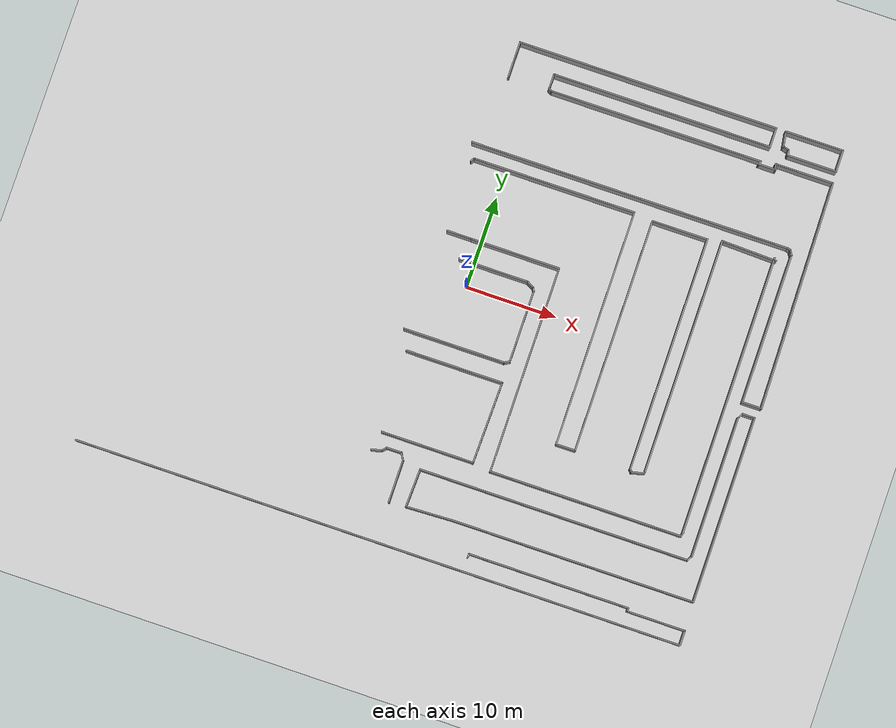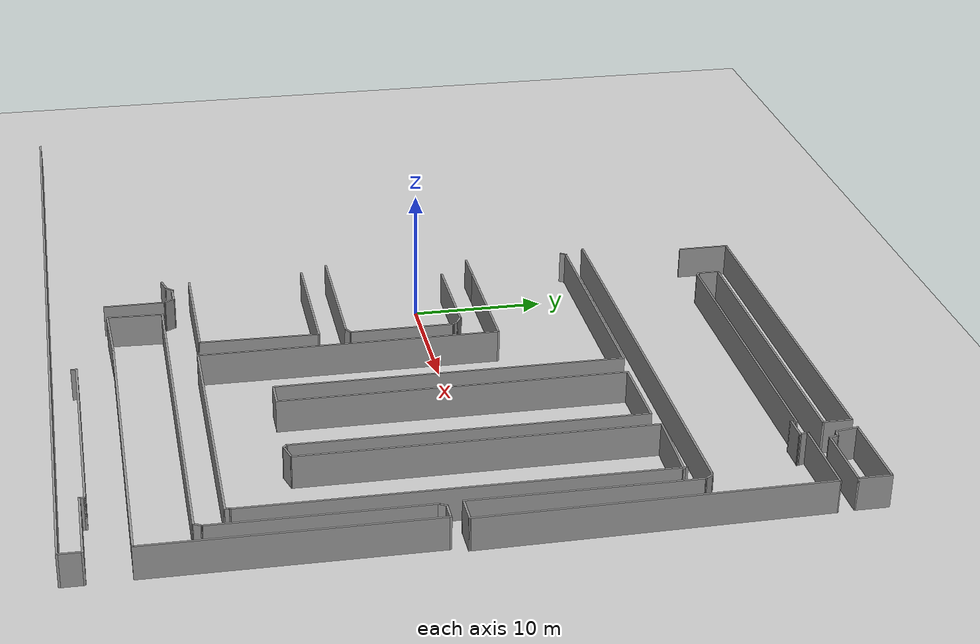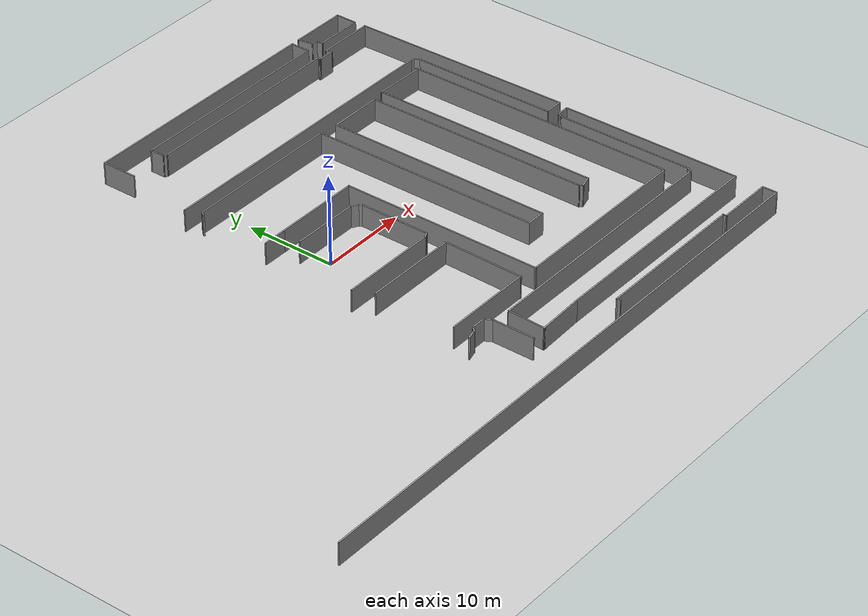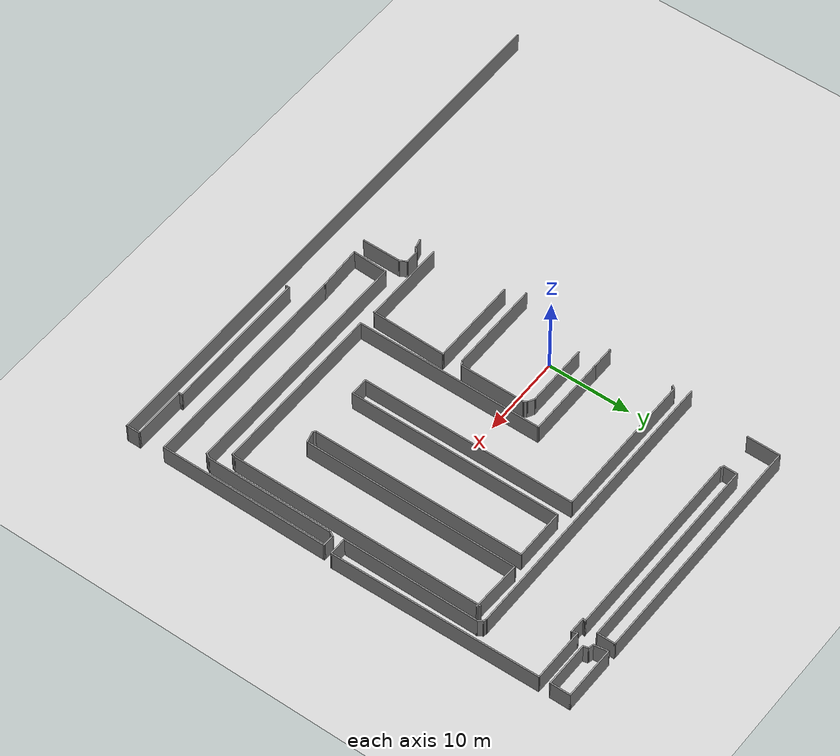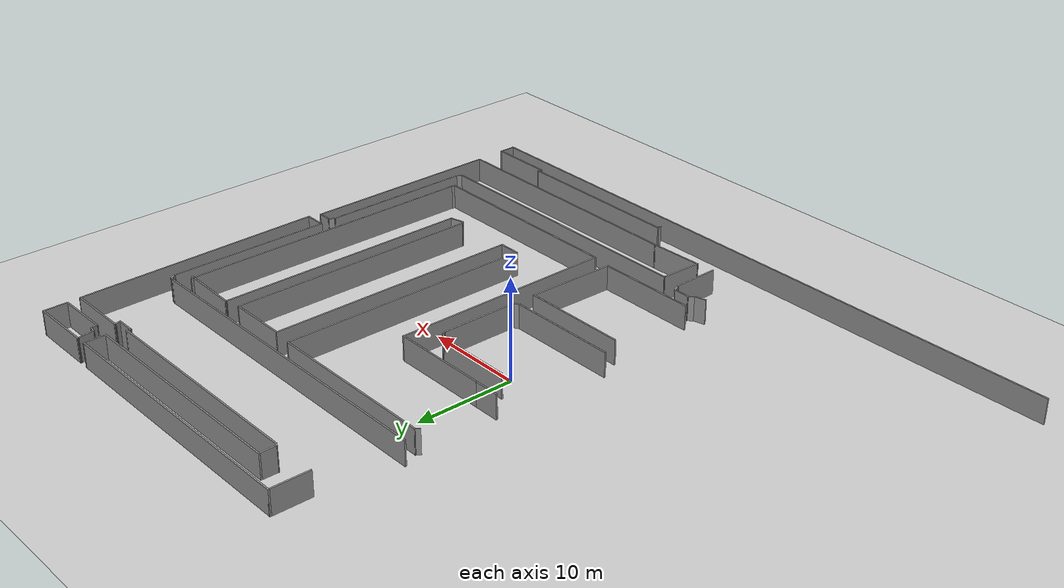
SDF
<sdf version="1.7">
 <world name="default">
  <model name="ground_plane">
   <static>1</static>
   <link name="link">
    <collision name="collision">
     <geometry><plane><normal>0 0 1</normal><size>100 100</size></plane></geometry>
     <surface><friction><ode><mu>100</mu><mu2>50</mu2></ode></friction></surface>
    </collision>
    <visual name="visual">
     <cast_shadows>0</cast_shadows>
     <geometry><plane><normal>0 0 1</normal><size>100 100</size></plane></geometry>
     <material>
      <script><uri>file://media/materials/scripts/gazebo.material</uri><name>Gazebo/Grey</name></script>
     </material>
    </visual>
   </link>
  </model>
  <model name="picture7">
   <pose>-0.026123 -1.16756 0 0 -0 0</pose>
   <link name="Wall_100">
    <collision name="Wall_100_Collision">
     <geometry><box><size>1.75 0.15 2.5</size></box></geometry>
     <pose>0 0 1.25 0 -0 0</pose>
    </collision>
    <visual name="Wall_100_Visual">
     <pose>0 0 1.25 0 -0 0</pose>
     <geometry><box><size>1.75 0.15 2.5</size></box></geometry>
     <material>
      <script><uri>file://media/materials/scripts/gazebo.material</uri><name>Gazebo/Grey</name></script>
      <ambient>1 1 1 1</ambient>
     </material>
     <meta><layer>0</layer></meta>
    </visual>
    <pose>33.2925 -26.6744 0 0 -0 1.5708</pose>
   </link>
   <link name="Wall_101">
    <collision name="Wall_101_Collision">
     <geometry><box><size>6.5 0.15 2.5</size></box></geometry>
     <pose>0 0 1.25 0 -0 0</pose>
    </collision>
    <visual name="Wall_101_Visual">
     <pose>0 0 1.25 0 -0 0</pose>
     <geometry><box><size>6.5 0.15 2.5</size></box></geometry>
     <material>
      <script><uri>file://media/materials/scripts/gazebo.material</uri><name>Gazebo/Grey</name></script>
      <ambient>1 1 1 1</ambient>
     </material>
     <meta><layer>0</layer></meta>
    </visual>
    <pose>30.1175 -25.8744 0 0 -0 3.14159</pose>
   </link>
   <link name="Wall_102">
    <collision name="Wall_102_Collision">
     <geometry><box><size>0.5 0.15 2.5</size></box></geometry>
     <pose>0 0 1.25 0 -0 0</pose>
    </collision>
    <visual name="Wall_102_Visual">
     <pose>0 0 1.25 0 -0 0</pose>
     <geometry><box><size>0.5 0.15 2.5</size></box></geometry>
     <material>
      <script><uri>file://media/materials/scripts/gazebo.material</uri><name>Gazebo/Grey</name></script>
      <ambient>1 1 1 1</ambient>
     </material>
     <meta><layer>0</layer></meta>
    </visual>
    <pose>26.9425 -25.6994 0 0 -0 1.5708</pose>
   </link>
   <link name="Wall_103">
    <collision name="Wall_103_Collision">
     <geometry><box><size>17.75 0.15 2.5</size></box></geometry>
     <pose>0 0 1.25 0 -0 0</pose>
    </collision>
    <visual name="Wall_103_Visual">
     <pose>0 0 1.25 0 -0 0</pose>
     <geometry><box><size>17.75 0.15 2.5</size></box></geometry>
     <material>
      <script><uri>file://media/materials/scripts/gazebo.material</uri><name>Gazebo/Grey</name></script>
      <ambient>1 1 1 1</ambient>
     </material>
     <meta><layer>0</layer></meta>
    </visual>
    <pose>18.1425 -25.5244 0 0 -0 3.14159</pose>
   </link>
   <link name="Wall_104">
    <collision name="Wall_104_Collision">
     <geometry><box><size>0.5 0.15 2.5</size></box></geometry>
     <pose>0 0 1.25 0 -0 0</pose>
    </collision>
    <visual name="Wall_104_Visual">
     <pose>0 0 1.25 0 -0 0</pose>
     <geometry><box><size>0.5 0.15 2.5</size></box></geometry>
     <material>
      <script><uri>file://media/materials/scripts/gazebo.material</uri><name>Gazebo/Grey</name></script>
      <ambient>1 1 1 1</ambient>
     </material>
     <meta><layer>0</layer></meta>
    </visual>
    <pose>9.34254 -25.6994 0 0 -0 -1.5708</pose>
   </link>
   <link name="Wall_126">
    <collision name="Wall_126_Collision">
     <geometry><box><size>4.75 0.15 2.5</size></box></geometry>
     <pose>0 0 1.25 0 -0 0</pose>
    </collision>
    <visual name="Wall_126_Visual">
     <pose>0 0 1.25 0 -0 0</pose>
     <geometry><box><size>4.75 0.15 2.5</size></box></geometry>
     <material>
      <script><uri>file://media/materials/scripts/gazebo.material</uri><name>Gazebo/Grey</name></script>
      <ambient>1 1 1 1</ambient>
     </material>
     <meta><layer>0</layer></meta>
    </visual>
    <pose>-0.359154 -20.7898 0 0 -0 1.5708</pose>
   </link>
   <link name="Wall_127">
    <collision name="Wall_127_Collision">
     <geometry><box><size>1 0.15 2.5</size></box></geometry>
     <pose>0 0 1.25 0 -0 0</pose>
    </collision>
    <visual name="Wall_127_Visual">
     <pose>0 0 1.25 0 -0 0</pose>
     <geometry><box><size>1 0.15 2.5</size></box></geometry>
     <material>
      <script><uri>file://media/materials/scripts/gazebo.material</uri><name>Gazebo/Grey</name></script>
      <ambient>1 1 1 1</ambient>
     </material>
     <meta><layer>0</layer></meta>
    </visual>
    <pose>-0.571654 -18.1218 0 0 -0 2.0944</pose>
   </link>
   <link name="Wall_128">
    <collision name="Wall_128_Collision">
     <geometry><box><size>1.75 0.15 2.5</size></box></geometry>
     <pose>0 0 1.25 0 -0 0</pose>
    </collision>
    <visual name="Wall_128_Visual">
     <pose>0 0 1.25 0 -0 0</pose>
     <geometry><box><size>1.75 0.15 2.5</size></box></geometry>
     <material>
      <script><uri>file://media/materials/scripts/gazebo.material</uri><name>Gazebo/Grey</name></script>
      <ambient>1 1 1 1</ambient>
     </material>
     <meta><layer>0</layer></meta>
    </visual>
    <pose>-1.58415 -17.7537 0 0 -0 3.14159</pose>
   </link>
   <link name="Wall_129">
    <collision name="Wall_129_Collision">
     <geometry><box><size>0.75 0.15 2.5</size></box></geometry>
     <pose>0 0 1.25 0 -0 0</pose>
    </collision>
    <visual name="Wall_129_Visual">
     <pose>0 0 1.25 0 -0 0</pose>
     <geometry><box><size>0.75 0.15 2.5</size></box></geometry>
     <material>
      <script><uri>file://media/materials/scripts/gazebo.material</uri><name>Gazebo/Grey</name></script>
      <ambient>1 1 1 1</ambient>
     </material>
     <meta><layer>0</layer></meta>
    </visual>
    <pose>-2.59629 -17.9658 0 0 -0 -2.35619</pose>
   </link>
   <link name="Wall_130">
    <collision name="Wall_130_Collision">
     <geometry><box><size>1.25 0.15 2.5</size></box></geometry>
     <pose>0 0 1.25 0 -0 0</pose>
    </collision>
    <visual name="Wall_130_Visual">
     <pose>0 0 1.25 0 -0 0</pose>
     <geometry><box><size>1.25 0.15 2.5</size></box></geometry>
     <material>
      <script><uri>file://media/materials/scripts/gazebo.material</uri><name>Gazebo/Grey</name></script>
      <ambient>1 1 1 1</ambient>
     </material>
     <meta><layer>0</layer></meta>
    </visual>
    <pose>-3.33968 -18.3203 0 0 -0 -2.87979</pose>
   </link>
   <link name="Wall_137">
    <collision name="Wall_137_Collision">
     <geometry><box><size>11.25 0.15 2.5</size></box></geometry>
     <pose>0 0 1.25 0 -0 0</pose>
    </collision>
    <visual name="Wall_137_Visual">
     <pose>0 0 1.25 0 -0 0</pose>
     <geometry><box><size>11.25 0.15 2.5</size></box></geometry>
     <material>
      <script><uri>file://media/materials/scripts/gazebo.material</uri><name>Gazebo/Grey</name></script>
      <ambient>1 1 1 1</ambient>
     </material>
     <meta><layer>0</layer></meta>
    </visual>
    <pose>0.850549 -5.30427 0 0 -0 0</pose>
   </link>
   <link name="Wall_138">
    <collision name="Wall_138_Collision">
     <geometry><box><size>0.75 0.15 2.5</size></box></geometry>
     <pose>0 0 1.25 0 -0 0</pose>
    </collision>
    <visual name="Wall_138_Visual">
     <pose>0 0 1.25 0 -0 0</pose>
     <geometry><box><size>0.75 0.15 2.5</size></box></geometry>
     <material>
      <script><uri>file://media/materials/scripts/gazebo.material</uri><name>Gazebo/Grey</name></script>
      <ambient>1 1 1 1</ambient>
     </material>
     <meta><layer>0</layer></meta>
    </visual>
    <pose>6.66036 -5.15427 0 0 -0 0.523599</pose>
   </link>
   <link name="Wall_139">
    <collision name="Wall_139_Collision">
     <geometry><box><size>8 0.15 2.5</size></box></geometry>
     <pose>0 0 1.25 0 -0 0</pose>
    </collision>
    <visual name="Wall_139_Visual">
     <pose>0 0 1.25 0 -0 0</pose>
     <geometry><box><size>8 0.15 2.5</size></box></geometry>
     <material>
      <script><uri>file://media/materials/scripts/gazebo.material</uri><name>Gazebo/Grey</name></script>
      <ambient>1 1 1 1</ambient>
     </material>
     <meta><layer>0</layer></meta>
    </visual>
    <pose>6.92016 -1.07927 0 0 -0 1.5708</pose>
   </link>
   <link name="Wall_140">
    <collision name="Wall_140_Collision">
     <geometry><box><size>0.5 0.15 2.5</size></box></geometry>
     <pose>0 0 1.25 0 -0 0</pose>
    </collision>
    <visual name="Wall_140_Visual">
     <pose>0 0 1.25 0 -0 0</pose>
     <geometry><box><size>0.5 0.15 2.5</size></box></geometry>
     <material>
      <script><uri>file://media/materials/scripts/gazebo.material</uri><name>Gazebo/Grey</name></script>
      <ambient>1 1 1 1</ambient>
     </material>
     <meta><layer>0</layer></meta>
    </visual>
    <pose>6.83266 2.99729 0 0 -0 2.0944</pose>
   </link>
   <link name="Wall_141">
    <collision name="Wall_141_Collision">
     <geometry><box><size>1 0.15 2.5</size></box></geometry>
     <pose>0 0 1.25 0 -0 0</pose>
    </collision>
    <visual name="Wall_141_Visual">
     <pose>0 0 1.25 0 -0 0</pose>
     <geometry><box><size>1 0.15 2.5</size></box></geometry>
     <material>
      <script><uri>file://media/materials/scripts/gazebo.material</uri><name>Gazebo/Grey</name></script>
      <ambient>1 1 1 1</ambient>
     </material>
     <meta><layer>0</layer></meta>
    </visual>
    <pose>6.3771 3.36134 0 0 -0 2.61799</pose>
   </link>
   <link name="Wall_142">
    <collision name="Wall_142_Collision">
     <geometry><box><size>7.75 0.15 2.5</size></box></geometry>
     <pose>0 0 1.25 0 -0 0</pose>
    </collision>
    <visual name="Wall_142_Visual">
     <pose>0 0 1.25 0 -0 0</pose>
     <geometry><box><size>7.75 0.15 2.5</size></box></geometry>
     <material>
      <script><uri>file://media/materials/scripts/gazebo.material</uri><name>Gazebo/Grey</name></script>
      <ambient>1 1 1 1</ambient>
     </material>
     <meta><layer>0</layer></meta>
    </visual>
    <pose>2.20904 3.57384 0 0 -0 3.14159</pose>
   </link>
   <link name="Wall_149">
    <collision name="Wall_149_Collision">
     <geometry><box><size>10.25 0.15 2.5</size></box></geometry>
     <pose>0 0 1.25 0 -0 0</pose>
    </collision>
    <visual name="Wall_149_Visual">
     <pose>0 0 1.25 0 -0 0</pose>
     <geometry><box><size>10.25 0.15 2.5</size></box></geometry>
     <material>
      <script><uri>file://media/materials/scripts/gazebo.material</uri><name>Gazebo/Grey</name></script>
      <ambient>1 1 1 1</ambient>
     </material>
     <meta><layer>0</layer></meta>
    </visual>
    <pose>1.62712 -16.3424 0 0 -0 0</pose>
   </link>
   <link name="Wall_150">
    <collision name="Wall_150_Collision">
     <geometry><box><size>9.13288 0.15 2.5</size></box></geometry>
     <pose>0 0 1.25 0 -0 0</pose>
    </collision>
    <visual name="Wall_150_Visual">
     <pose>0 0 1.25 0 -0 0</pose>
     <geometry><box><size>9.13288 0.15 2.5</size></box></geometry>
     <material>
      <script><uri>file://media/materials/scripts/gazebo.material</uri><name>Gazebo/Grey</name></script>
      <ambient>1 1 1 1</ambient>
     </material>
     <meta><layer>0</layer></meta>
    </visual>
    <pose>6.77655 -11.8919 0 0 -0 1.54866</pose>
   </link>
   <link name="Wall_151">
    <collision name="Wall_151_Collision">
     <geometry><box><size>10.75 0.15 2.5</size></box></geometry>
     <pose>0 0 1.25 0 -0 0</pose>
    </collision>
    <visual name="Wall_151_Visual">
     <pose>0 0 1.25 0 -0 0</pose>
     <geometry><box><size>10.75 0.15 2.5</size></box></geometry>
     <material>
      <script><uri>file://media/materials/scripts/gazebo.material</uri><name>Gazebo/Grey</name></script>
      <ambient>1 1 1 1</ambient>
     </material>
     <meta><layer>0</layer></meta>
    </visual>
    <pose>1.57598 -7.40151 0 0 -0 3.14159</pose>
   </link>
   <link name="Wall_156">
    <collision name="Wall_156_Collision">
     <geometry><box><size>5.50418 0.15 2.5</size></box></geometry>
     <pose>0 0 1.25 0 -0 0</pose>
    </collision>
    <visual name="Wall_156_Visual">
     <pose>0 0 1.25 0 -0 0</pose>
     <geometry><box><size>5.50418 0.15 2.5</size></box></geometry>
     <material>
      <script><uri>file://media/materials/scripts/gazebo.material</uri><name>Gazebo/Grey</name></script>
      <ambient>1 1 1 1</ambient>
     </material>
     <meta><layer>0</layer></meta>
    </visual>
    <pose>4.17479 -22.8521 0 0 -0 0.039531</pose>
   </link>
   <link name="Wall_157">
    <collision name="Wall_157_Collision">
     <geometry><box><size>26.5 0.15 2.5</size></box></geometry>
     <pose>0 0 1.25 0 -0 0</pose>
    </collision>
    <visual name="Wall_157_Visual">
     <pose>0 0 1.25 0 -0 0</pose>
     <geometry><box><size>26.5 0.15 2.5</size></box></geometry>
     <material>
      <script><uri>file://media/materials/scripts/gazebo.material</uri><name>Gazebo/Grey</name></script>
      <ambient>1 1 1 1</ambient>
     </material>
     <meta><layer>0</layer></meta>
    </visual>
    <pose>20.0248 -22.7463 0 0 -0 0</pose>
   </link>
   <link name="Wall_158">
    <collision name="Wall_158_Collision">
     <geometry><box><size>20.5 0.15 2.5</size></box></geometry>
     <pose>0 0 1.25 0 -0 0</pose>
    </collision>
    <visual name="Wall_158_Visual">
     <pose>0 0 1.25 0 -0 0</pose>
     <geometry><box><size>20.5 0.15 2.5</size></box></geometry>
     <material>
      <script><uri>file://media/materials/scripts/gazebo.material</uri><name>Gazebo/Grey</name></script>
      <ambient>1 1 1 1</ambient>
     </material>
     <meta><layer>0</layer></meta>
    </visual>
    <pose>33.1998 -12.5713 0 0 -0 1.5708</pose>
   </link>
   <link name="Wall_159">
    <collision name="Wall_159_Collision">
     <geometry><box><size>1.5 0.15 2.5</size></box></geometry>
     <pose>0 0 1.25 0 -0 0</pose>
    </collision>
    <visual name="Wall_159_Visual">
     <pose>0 0 1.25 0 -0 0</pose>
     <geometry><box><size>1.5 0.15 2.5</size></box></geometry>
     <material>
      <script><uri>file://media/materials/scripts/gazebo.material</uri><name>Gazebo/Grey</name></script>
      <ambient>1 1 1 1</ambient>
     </material>
     <meta><layer>0</layer></meta>
    </visual>
    <pose>32.5248 -2.39634 0 0 -0 3.14159</pose>
   </link>
   <link name="Wall_160">
    <collision name="Wall_160_Collision">
     <geometry><box><size>0.75 0.15 2.5</size></box></geometry>
     <pose>0 0 1.25 0 -0 0</pose>
    </collision>
    <visual name="Wall_160_Visual">
     <pose>0 0 1.25 0 -0 0</pose>
     <geometry><box><size>0.75 0.15 2.5</size></box></geometry>
     <material>
      <script><uri>file://media/materials/scripts/gazebo.material</uri><name>Gazebo/Grey</name></script>
      <ambient>1 1 1 1</ambient>
     </material>
     <meta><layer>0</layer></meta>
    </visual>
    <pose>31.6998 -2.65615 0 0 -0 -2.0944</pose>
   </link>
   <link name="Wall_161">
    <collision name="Wall_161_Collision">
     <geometry><box><size>15.5 0.15 2.5</size></box></geometry>
     <pose>0 0 1.25 0 -0 0</pose>
    </collision>
    <visual name="Wall_161_Visual">
     <pose>0 0 1.25 0 -0 0</pose>
     <geometry><box><size>15.5 0.15 2.5</size></box></geometry>
     <material>
      <script><uri>file://media/materials/scripts/gazebo.material</uri><name>Gazebo/Grey</name></script>
      <ambient>1 1 1 1</ambient>
     </material>
     <meta><layer>0</layer></meta>
    </visual>
    <pose>31.5498 -10.591 0 0 -0 -1.5708</pose>
   </link>
   <link name="Wall_162">
    <collision name="Wall_162_Collision">
     <geometry><box><size>0.75 0.15 2.5</size></box></geometry>
     <pose>0 0 1.25 0 -0 0</pose>
    </collision>
    <visual name="Wall_162_Visual">
     <pose>0 0 1.25 0 -0 0</pose>
     <geometry><box><size>0.75 0.15 2.5</size></box></geometry>
     <material>
      <script><uri>file://media/materials/scripts/gazebo.material</uri><name>Gazebo/Grey</name></script>
      <ambient>1 1 1 1</ambient>
     </material>
     <meta><layer>0</layer></meta>
    </visual>
    <pose>31.3998 -18.5258 0 0 -0 -2.0944</pose>
   </link>
   <link name="Wall_163">
    <collision name="Wall_163_Collision">
     <geometry><box><size>29.75 0.15 2.5</size></box></geometry>
     <pose>0 0 1.25 0 -0 0</pose>
    </collision>
    <visual name="Wall_163_Visual">
     <pose>0 0 1.25 0 -0 0</pose>
     <geometry><box><size>29.75 0.15 2.5</size></box></geometry>
     <material>
      <script><uri>file://media/materials/scripts/gazebo.material</uri><name>Gazebo/Grey</name></script>
      <ambient>1 1 1 1</ambient>
     </material>
     <meta><layer>0</layer></meta>
    </visual>
    <pose>16.4498 -18.7856 0 0 -0 3.14159</pose>
   </link>
   <link name="Wall_166">
    <collision name="Wall_166_Collision">
     <geometry><box><size>4.32507 0.15 2.5</size></box></geometry>
     <pose>0 0 1.25 0 -0 0</pose>
    </collision>
    <visual name="Wall_166_Visual">
     <pose>0 0 1.25 0 -0 0</pose>
     <geometry><box><size>4.32507 0.15 2.5</size></box></geometry>
     <material>
      <script><uri>file://media/materials/scripts/gazebo.material</uri><name>Gazebo/Grey</name></script>
      <ambient>1 1 1 1</ambient>
     </material>
     <meta><layer>0</layer></meta>
    </visual>
    <pose>1.57479 -20.8718 0 0 -0 1.53486</pose>
   </link>
   <link name="Wall_31">
    <collision name="Wall_31_Collision">
     <geometry><box><size>4 0.15 2.5</size></box></geometry>
     <pose>0 0 1.25 0 -0 0</pose>
    </collision>
    <visual name="Wall_31_Visual">
     <pose>0 0 1.25 0 -0 0</pose>
     <geometry><box><size>4 0.15 2.5</size></box></geometry>
     <material>
      <script><uri>file://media/materials/scripts/gazebo.material</uri><name>Gazebo/Grey</name></script>
      <ambient>1 1 1 1</ambient>
     </material>
     <meta><layer>0</layer></meta>
    </visual>
    <pose>-2.91075 25.5335 0 0 -0 1.5708</pose>
   </link>
   <link name="Wall_32">
    <collision name="Wall_32_Collision">
     <geometry><box><size>28.75 0.15 2.5</size></box></geometry>
     <pose>0 0 1.25 0 -0 0</pose>
    </collision>
    <visual name="Wall_32_Visual">
     <pose>0 0 1.25 0 -0 0</pose>
     <geometry><box><size>28.75 0.15 2.5</size></box></geometry>
     <material>
      <script><uri>file://media/materials/scripts/gazebo.material</uri><name>Gazebo/Grey</name></script>
      <ambient>1 1 1 1</ambient>
     </material>
     <meta><layer>0</layer></meta>
    </visual>
    <pose>11.3892 27.4585 0 0 -0 0</pose>
   </link>
   <link name="Wall_33">
    <collision name="Wall_33_Collision">
     <geometry><box><size>2.25 0.15 2.5</size></box></geometry>
     <pose>0 0 1.25 0 -0 0</pose>
    </collision>
    <visual name="Wall_33_Visual">
     <pose>0 0 1.25 0 -0 0</pose>
     <geometry><box><size>2.25 0.15 2.5</size></box></geometry>
     <material>
      <script><uri>file://media/materials/scripts/gazebo.material</uri><name>Gazebo/Grey</name></script>
      <ambient>1 1 1 1</ambient>
     </material>
     <meta><layer>0</layer></meta>
    </visual>
    <pose>25.6892 26.4085 0 0 -0 -1.5708</pose>
   </link>
   <link name="Wall_34">
    <collision name="Wall_34_Collision">
     <geometry><box><size>24.25 0.15 2.5</size></box></geometry>
     <pose>0 0 1.25 0 -0 0</pose>
    </collision>
    <visual name="Wall_34_Visual">
     <pose>0 0 1.25 0 -0 0</pose>
     <geometry><box><size>24.25 0.15 2.5</size></box></geometry>
     <material>
      <script><uri>file://media/materials/scripts/gazebo.material</uri><name>Gazebo/Grey</name></script>
      <ambient>1 1 1 1</ambient>
     </material>
     <meta><layer>0</layer></meta>
    </visual>
    <pose>13.6392 25.3585 0 0 -0 3.14159</pose>
   </link>
   <link name="Wall_35">
    <collision name="Wall_35_Collision">
     <geometry><box><size>1.75 0.15 2.5</size></box></geometry>
     <pose>0 0 1.25 0 -0 0</pose>
    </collision>
    <visual name="Wall_35_Visual">
     <pose>0 0 1.25 0 -0 0</pose>
     <geometry><box><size>1.75 0.15 2.5</size></box></geometry>
     <material>
      <script><uri>file://media/materials/scripts/gazebo.material</uri><name>Gazebo/Grey</name></script>
      <ambient>1 1 1 1</ambient>
     </material>
     <meta><layer>0</layer></meta>
    </visual>
    <pose>1.58925 24.5585 0 0 -0 -1.5708</pose>
   </link>
   <link name="Wall_36">
    <collision name="Wall_36_Collision">
     <geometry><box><size>0.5 0.15 2.5</size></box></geometry>
     <pose>0 0 1.25 0 -0 0</pose>
    </collision>
    <visual name="Wall_36_Visual">
     <pose>0 0 1.25 0 -0 0</pose>
     <geometry><box><size>0.5 0.15 2.5</size></box></geometry>
     <material>
      <script><uri>file://media/materials/scripts/gazebo.material</uri><name>Gazebo/Grey</name></script>
      <ambient>1 1 1 1</ambient>
     </material>
     <meta><layer>0</layer></meta>
    </visual>
    <pose>1.7408 23.671 0 0 -0 -0.523599</pose>
   </link>
   <link name="Wall_37">
    <collision name="Wall_37_Collision">
     <geometry><box><size>23.5 0.15 2.5</size></box></geometry>
     <pose>0 0 1.25 0 -0 0</pose>
    </collision>
    <visual name="Wall_37_Visual">
     <pose>0 0 1.25 0 -0 0</pose>
     <geometry><box><size>23.5 0.15 2.5</size></box></geometry>
     <material>
      <script><uri>file://media/materials/scripts/gazebo.material</uri><name>Gazebo/Grey</name></script>
      <ambient>1 1 1 1</ambient>
     </material>
     <meta><layer>0</layer></meta>
    </visual>
    <pose>13.5674 23.5835 0 0 -0 0</pose>
   </link>
   <link name="Wall_38">
    <collision name="Wall_38_Collision">
     <geometry><box><size>0.5 0.15 2.5</size></box></geometry>
     <pose>0 0 1.25 0 -0 0</pose>
    </collision>
    <visual name="Wall_38_Visual">
     <pose>0 0 1.25 0 -0 0</pose>
     <geometry><box><size>0.5 0.15 2.5</size></box></geometry>
     <material>
      <script><uri>file://media/materials/scripts/gazebo.material</uri><name>Gazebo/Grey</name></script>
      <ambient>1 1 1 1</ambient>
     </material>
     <meta><layer>0</layer></meta>
    </visual>
    <pose>25.1971 23.4145 0 0 -0 -1.8326</pose>
   </link>
   <link name="Wall_39">
    <collision name="Wall_39_Collision">
     <geometry><box><size>2 0.15 2.5</size></box></geometry>
     <pose>0 0 1.25 0 -0 0</pose>
    </collision>
    <visual name="Wall_39_Visual">
     <pose>0 0 1.25 0 -0 0</pose>
     <geometry><box><size>2 0.15 2.5</size></box></geometry>
     <material>
      <script><uri>file://media/materials/scripts/gazebo.material</uri><name>Gazebo/Grey</name></script>
      <ambient>1 1 1 1</ambient>
     </material>
     <meta><layer>0</layer></meta>
    </visual>
    <pose>26.0768 23.2454 0 0 -0 0</pose>
   </link>
   <link name="Wall_40">
    <collision name="Wall_40_Collision">
     <geometry><box><size>0.75 0.15 2.5</size></box></geometry>
     <pose>0 0 1.25 0 -0 0</pose>
    </collision>
    <visual name="Wall_40_Visual">
     <pose>0 0 1.25 0 -0 0</pose>
     <geometry><box><size>0.75 0.15 2.5</size></box></geometry>
     <material>
      <script><uri>file://media/materials/scripts/gazebo.material</uri><name>Gazebo/Grey</name></script>
      <ambient>1 1 1 1</ambient>
     </material>
     <meta><layer>0</layer></meta>
    </visual>
    <pose>26.9241 23.5352 0 0 -0 1.8326</pose>
   </link>
   <link name="Wall_41">
    <collision name="Wall_41_Collision">
     <geometry><box><size>6.5 0.15 2.5</size></box></geometry>
     <pose>0 0 1.25 0 -0 0</pose>
    </collision>
    <visual name="Wall_41_Visual">
     <pose>0 0 1.25 0 -0 0</pose>
     <geometry><box><size>6.5 0.15 2.5</size></box></geometry>
     <material>
      <script><uri>file://media/materials/scripts/gazebo.material</uri><name>Gazebo/Grey</name></script>
      <ambient>1 1 1 1</ambient>
     </material>
     <meta><layer>0</layer></meta>
    </visual>
    <pose>30.0215 23.825 0 0 -0 0</pose>
   </link>
   <link name="Wall_43">
    <collision name="Wall_43_Collision">
     <geometry><box><size>6.5 0.15 2.5</size></box></geometry>
     <pose>0 0 1.25 0 -0 0</pose>
    </collision>
    <visual name="Wall_43_Visual">
     <pose>0 0 1.25 0 -0 0</pose>
     <geometry><box><size>6.5 0.15 2.5</size></box></geometry>
     <material>
      <script><uri>file://media/materials/scripts/gazebo.material</uri><name>Gazebo/Grey</name></script>
      <ambient>1 1 1 1</ambient>
     </material>
     <meta><layer>0</layer></meta>
    </visual>
    <pose>29.9393 27.4656 0 0 -0 0</pose>
   </link>
   <link name="Wall_44">
    <collision name="Wall_44_Collision">
     <geometry><box><size>2.5 0.15 2.5</size></box></geometry>
     <pose>0 0 1.25 0 -0 0</pose>
    </collision>
    <visual name="Wall_44_Visual">
     <pose>0 0 1.25 0 -0 0</pose>
     <geometry><box><size>2.5 0.15 2.5</size></box></geometry>
     <material>
      <script><uri>file://media/materials/scripts/gazebo.material</uri><name>Gazebo/Grey</name></script>
      <ambient>1 1 1 1</ambient>
     </material>
     <meta><layer>0</layer></meta>
    </visual>
    <pose>33.1143 26.2906 0 0 -0 -1.5708</pose>
   </link>
   <link name="Wall_45">
    <collision name="Wall_45_Collision">
     <geometry><box><size>5.5 0.15 2.5</size></box></geometry>
     <pose>0 0 1.25 0 -0 0</pose>
    </collision>
    <visual name="Wall_45_Visual">
     <pose>0 0 1.25 0 -0 0</pose>
     <geometry><box><size>5.5 0.15 2.5</size></box></geometry>
     <material>
      <script><uri>file://media/materials/scripts/gazebo.material</uri><name>Gazebo/Grey</name></script>
      <ambient>1 1 1 1</ambient>
     </material>
     <meta><layer>0</layer></meta>
    </visual>
    <pose>30.4393 25.1156 0 0 -0 3.14159</pose>
   </link>
   <link name="Wall_46">
    <collision name="Wall_46_Collision">
     <geometry><box><size>0.75 0.15 2.5</size></box></geometry>
     <pose>0 0 1.25 0 -0 0</pose>
    </collision>
    <visual name="Wall_46_Visual">
     <pose>0 0 1.25 0 -0 0</pose>
     <geometry><box><size>0.75 0.15 2.5</size></box></geometry>
     <material>
      <script><uri>file://media/materials/scripts/gazebo.material</uri><name>Gazebo/Grey</name></script>
      <ambient>1 1 1 1</ambient>
     </material>
     <meta><layer>0</layer></meta>
    </visual>
    <pose>27.6867 25.4054 0 0 -0 1.8326</pose>
   </link>
   <link name="Wall_47">
    <collision name="Wall_47_Collision">
     <geometry><box><size>0.75 0.15 2.5</size></box></geometry>
     <pose>0 0 1.25 0 -0 0</pose>
    </collision>
    <visual name="Wall_47_Visual">
     <pose>0 0 1.25 0 -0 0</pose>
     <geometry><box><size>0.75 0.15 2.5</size></box></geometry>
     <material>
      <script><uri>file://media/materials/scripts/gazebo.material</uri><name>Gazebo/Grey</name></script>
      <ambient>1 1 1 1</ambient>
     </material>
     <meta><layer>0</layer></meta>
    </visual>
    <pose>27.3193 25.7728 0 0 -0 2.87979</pose>
   </link>
   <link name="Wall_48">
    <collision name="Wall_48_Collision">
     <geometry><box><size>1.78677 0.15 2.5</size></box></geometry>
     <pose>0 0 1.25 0 -0 0</pose>
    </collision>
    <visual name="Wall_48_Visual">
     <pose>0 0 1.25 0 -0 0</pose>
     <geometry><box><size>1.78677 0.15 2.5</size></box></geometry>
     <material>
      <script><uri>file://media/materials/scripts/gazebo.material</uri><name>Gazebo/Grey</name></script>
      <ambient>1 1 1 1</ambient>
     </material>
     <meta><layer>0</layer></meta>
    </visual>
    <pose>26.8969 26.658 0 0 -0 1.73351</pose>
   </link>
   <link name="Wall_56">
    <collision name="Wall_56_Collision">
     <geometry><box><size>35.25 0.15 2.5</size></box></geometry>
     <pose>0 0 1.25 0 -0 0</pose>
    </collision>
    <visual name="Wall_56_Visual">
     <pose>0 0 1.25 0 -0 0</pose>
     <geometry><box><size>35.25 0.15 2.5</size></box></geometry>
     <material>
      <script><uri>file://media/materials/scripts/gazebo.material</uri><name>Gazebo/Grey</name></script>
      <ambient>1 1 1 1</ambient>
     </material>
     <meta><layer>0</layer></meta>
    </visual>
    <pose>13.2706 15.7399 0 0 -0 0</pose>
   </link>
   <link name="Wall_57">
    <collision name="Wall_57_Collision">
     <geometry><box><size>0.5 0.15 2.5</size></box></geometry>
     <pose>0 0 1.25 0 -0 0</pose>
    </collision>
    <visual name="Wall_57_Visual">
     <pose>0 0 1.25 0 -0 0</pose>
     <geometry><box><size>0.5 0.15 2.5</size></box></geometry>
     <material>
      <script><uri>file://media/materials/scripts/gazebo.material</uri><name>Gazebo/Grey</name></script>
      <ambient>1 1 1 1</ambient>
     </material>
     <meta><layer>0</layer></meta>
    </visual>
    <pose>30.9897 15.6946 0 0 -0 -0.261799</pose>
   </link>
   <link name="Wall_58">
    <collision name="Wall_58_Collision">
     <geometry><box><size>0.75 0.15 2.5</size></box></geometry>
     <pose>0 0 1.25 0 -0 0</pose>
    </collision>
    <visual name="Wall_58_Visual">
     <pose>0 0 1.25 0 -0 0</pose>
     <geometry><box><size>0.75 0.15 2.5</size></box></geometry>
     <material>
      <script><uri>file://media/materials/scripts/gazebo.material</uri><name>Gazebo/Grey</name></script>
      <ambient>1 1 1 1</ambient>
     </material>
     <meta><layer>0</layer></meta>
    </visual>
    <pose>31.3087 15.3895 0 0 -0 -1.0472</pose>
   </link>
   <link name="Wall_59">
    <collision name="Wall_59_Collision">
     <geometry><box><size>16.5 0.15 2.5</size></box></geometry>
     <pose>0 0 1.25 0 -0 0</pose>
    </collision>
    <visual name="Wall_59_Visual">
     <pose>0 0 1.25 0 -0 0</pose>
     <geometry><box><size>16.5 0.15 2.5</size></box></geometry>
     <material>
      <script><uri>file://media/materials/scripts/gazebo.material</uri><name>Gazebo/Grey</name></script>
      <ambient>1 1 1 1</ambient>
     </material>
     <meta><layer>0</layer></meta>
    </visual>
    <pose>31.4587 6.95466 0 0 -0 -1.5708</pose>
   </link>
   <link name="Wall_60">
    <collision name="Wall_60_Collision">
     <geometry><box><size>2.25 0.15 2.5</size></box></geometry>
     <pose>0 0 1.25 0 -0 0</pose>
    </collision>
    <visual name="Wall_60_Visual">
     <pose>0 0 1.25 0 -0 0</pose>
     <geometry><box><size>2.25 0.15 2.5</size></box></geometry>
     <material>
      <script><uri>file://media/materials/scripts/gazebo.material</uri><name>Gazebo/Grey</name></script>
      <ambient>1 1 1 1</ambient>
     </material>
     <meta><layer>0</layer></meta>
    </visual>
    <pose>32.5087 -1.22034 0 0 -0 0</pose>
   </link>
   <link name="Wall_61">
    <collision name="Wall_61_Collision">
     <geometry><box><size>25.1979 0.15 2.5</size></box></geometry>
     <pose>0 0 1.25 0 -0 0</pose>
    </collision>
    <visual name="Wall_61_Visual">
     <pose>0 0 1.25 0 -0 0</pose>
     <geometry><box><size>25.1979 0.15 2.5</size></box></geometry>
     <material>
      <script><uri>file://media/materials/scripts/gazebo.material</uri><name>Gazebo/Grey</name></script>
      <ambient>1 1 1 1</ambient>
     </material>
     <meta><layer>0</layer></meta>
    </visual>
    <pose>33.3776 11.3023 0 0 -0 1.58526</pose>
   </link>
   <link name="Wall_77">
    <collision name="Wall_77_Collision">
     <geometry><box><size>18 0.15 2.5</size></box></geometry>
     <pose>0 0 1.25 0 -0 0</pose>
    </collision>
    <visual name="Wall_77_Visual">
     <pose>0 0 1.25 0 -0 0</pose>
     <geometry><box><size>18 0.15 2.5</size></box></geometry>
     <material>
      <script><uri>file://media/materials/scripts/gazebo.material</uri><name>Gazebo/Grey</name></script>
      <ambient>1 1 1 1</ambient>
     </material>
     <meta><layer>0</layer></meta>
    </visual>
    <pose>5.39891 14.148 0 0 -0 0</pose>
   </link>
   <link name="Wall_78">
    <collision name="Wall_78_Collision">
     <geometry><box><size>26 0.15 2.5</size></box></geometry>
     <pose>0 0 1.25 0 -0 0</pose>
    </collision>
    <visual name="Wall_78_Visual">
     <pose>0 0 1.25 0 -0 0</pose>
     <geometry><box><size>26 0.15 2.5</size></box></geometry>
     <material>
      <script><uri>file://media/materials/scripts/gazebo.material</uri><name>Gazebo/Grey</name></script>
      <ambient>1 1 1 1</ambient>
     </material>
     <meta><layer>0</layer></meta>
    </visual>
    <pose>14.3239 1.22302 0 0 -0 -1.5708</pose>
   </link>
   <link name="Wall_79">
    <collision name="Wall_79_Collision">
     <geometry><box><size>2.25 0.15 2.5</size></box></geometry>
     <pose>0 0 1.25 0 -0 0</pose>
    </collision>
    <visual name="Wall_79_Visual">
     <pose>0 0 1.25 0 -0 0</pose>
     <geometry><box><size>2.25 0.15 2.5</size></box></geometry>
     <material>
      <script><uri>file://media/materials/scripts/gazebo.material</uri><name>Gazebo/Grey</name></script>
      <ambient>1 1 1 1</ambient>
     </material>
     <meta><layer>0</layer></meta>
    </visual>
    <pose>15.3739 -11.702 0 0 -0 0</pose>
   </link>
   <link name="Wall_80">
    <collision name="Wall_80_Collision">
     <geometry><box><size>25.75 0.15 2.5</size></box></geometry>
     <pose>0 0 1.25 0 -0 0</pose>
    </collision>
    <visual name="Wall_80_Visual">
     <pose>0 0 1.25 0 -0 0</pose>
     <geometry><box><size>25.75 0.15 2.5</size></box></geometry>
     <material>
      <script><uri>file://media/materials/scripts/gazebo.material</uri><name>Gazebo/Grey</name></script>
      <ambient>1 1 1 1</ambient>
     </material>
     <meta><layer>0</layer></meta>
    </visual>
    <pose>16.4239 1.09802 0 0 -0 1.5708</pose>
   </link>
   <link name="Wall_81">
    <collision name="Wall_81_Collision">
     <geometry><box><size>6.25 0.15 2.5</size></box></geometry>
     <pose>0 0 1.25 0 -0 0</pose>
    </collision>
    <visual name="Wall_81_Visual">
     <pose>0 0 1.25 0 -0 0</pose>
     <geometry><box><size>6.25 0.15 2.5</size></box></geometry>
     <material>
      <script><uri>file://media/materials/scripts/gazebo.material</uri><name>Gazebo/Grey</name></script>
      <ambient>1 1 1 1</ambient>
     </material>
     <meta><layer>0</layer></meta>
    </visual>
    <pose>19.4739 13.898 0 0 -0 0</pose>
   </link>
   <link name="Wall_82">
    <collision name="Wall_82_Collision">
     <geometry><box><size>25.75 0.15 2.5</size></box></geometry>
     <pose>0 0 1.25 0 -0 0</pose>
    </collision>
    <visual name="Wall_82_Visual">
     <pose>0 0 1.25 0 -0 0</pose>
     <geometry><box><size>25.75 0.15 2.5</size></box></geometry>
     <material>
      <script><uri>file://media/materials/scripts/gazebo.material</uri><name>Gazebo/Grey</name></script>
      <ambient>1 1 1 1</ambient>
     </material>
     <meta><layer>0</layer></meta>
    </visual>
    <pose>22.5239 1.09802 0 0 -0 -1.5708</pose>
   </link>
   <link name="Wall_83">
    <collision name="Wall_83_Collision">
     <geometry><box><size>0.5 0.15 2.5</size></box></geometry>
     <pose>0 0 1.25 0 -0 0</pose>
    </collision>
    <visual name="Wall_83_Visual">
     <pose>0 0 1.25 0 -0 0</pose>
     <geometry><box><size>0.5 0.15 2.5</size></box></geometry>
     <material>
      <script><uri>file://media/materials/scripts/gazebo.material</uri><name>Gazebo/Grey</name></script>
      <ambient>1 1 1 1</ambient>
     </material>
     <meta><layer>0</layer></meta>
    </visual>
    <pose>22.6477 -11.8257 0 0 -0 -0.785398</pose>
   </link>
   <link name="Wall_84">
    <collision name="Wall_84_Collision">
     <geometry><box><size>1.5 0.15 2.5</size></box></geometry>
     <pose>0 0 1.25 0 -0 0</pose>
    </collision>
    <visual name="Wall_84_Visual">
     <pose>0 0 1.25 0 -0 0</pose>
     <geometry><box><size>1.5 0.15 2.5</size></box></geometry>
     <material>
      <script><uri>file://media/materials/scripts/gazebo.material</uri><name>Gazebo/Grey</name></script>
      <ambient>1 1 1 1</ambient>
     </material>
     <meta><layer>0</layer></meta>
    </visual>
    <pose>23.4234 -11.7748 0 0 -0 0.261799</pose>
   </link>
   <link name="Wall_85">
    <collision name="Wall_85_Collision">
     <geometry><box><size>26 0.15 2.5</size></box></geometry>
     <pose>0 0 1.25 0 -0 0</pose>
    </collision>
    <visual name="Wall_85_Visual">
     <pose>0 0 1.25 0 -0 0</pose>
     <geometry><box><size>26 0.15 2.5</size></box></geometry>
     <material>
      <script><uri>file://media/materials/scripts/gazebo.material</uri><name>Gazebo/Grey</name></script>
      <ambient>1 1 1 1</ambient>
     </material>
     <meta><layer>0</layer></meta>
    </visual>
    <pose>24.0754 1.32494 0 0 -0 1.5708</pose>
   </link>
   <link name="Wall_86">
    <collision name="Wall_86_Collision">
     <geometry><box><size>6.17281 0.15 2.5</size></box></geometry>
     <pose>0 0 1.25 0 -0 0</pose>
    </collision>
    <visual name="Wall_86_Visual">
     <pose>0 0 1.25 0 -0 0</pose>
     <geometry><box><size>6.17281 0.15 2.5</size></box></geometry>
     <material>
      <script><uri>file://media/materials/scripts/gazebo.material</uri><name>Gazebo/Grey</name></script>
      <ambient>1 1 1 1</ambient>
     </material>
     <meta><layer>0</layer></meta>
    </visual>
    <pose>27.0854 14.1579 0 0 -0 -0.030555</pose>
   </link>
   <link name="Wall_90">
    <collision name="Wall_90_Collision">
     <geometry><box><size>30.75 0.15 2.5</size></box></geometry>
     <pose>0 0 1.25 0 -0 0</pose>
    </collision>
    <visual name="Wall_90_Visual">
     <pose>0 0 1.25 0 -0 0</pose>
     <geometry><box><size>30.75 0.15 2.5</size></box></geometry>
     <material>
      <script><uri>file://media/materials/scripts/gazebo.material</uri><name>Gazebo/Grey</name></script>
      <ambient>1 1 1 1</ambient>
     </material>
     <meta><layer>0</layer></meta>
    </visual>
    <pose>29.8756 -0.992458 0 0 -0 -1.5708</pose>
   </link>
   <link name="Wall_91">
    <collision name="Wall_91_Collision">
     <geometry><box><size>0.5 0.15 2.5</size></box></geometry>
     <pose>0 0 1.25 0 -0 0</pose>
    </collision>
    <visual name="Wall_91_Visual">
     <pose>0 0 1.25 0 -0 0</pose>
     <geometry><box><size>0.5 0.15 2.5</size></box></geometry>
     <material>
      <script><uri>file://media/materials/scripts/gazebo.material</uri><name>Gazebo/Grey</name></script>
      <ambient>1 1 1 1</ambient>
     </material>
     <meta><layer>0</layer></meta>
    </visual>
    <pose>29.8303 -16.4615 0 0 -0 -1.8326</pose>
   </link>
   <link name="Wall_92">
    <collision name="Wall_92_Collision">
     <geometry><box><size>21.25 0.15 2.5</size></box></geometry>
     <pose>0 0 1.25 0 -0 0</pose>
    </collision>
    <visual name="Wall_92_Visual">
     <pose>0 0 1.25 0 -0 0</pose>
     <geometry><box><size>21.25 0.15 2.5</size></box></geometry>
     <material>
      <script><uri>file://media/materials/scripts/gazebo.material</uri><name>Gazebo/Grey</name></script>
      <ambient>1 1 1 1</ambient>
     </material>
     <meta><layer>0</layer></meta>
    </visual>
    <pose>19.235 -16.6305 0 0 -0 3.14159</pose>
   </link>
   <link name="Wall_93">
    <collision name="Wall_93_Collision">
     <geometry><box><size>22.75 0.15 2.5</size></box></geometry>
     <pose>0 0 1.25 0 -0 0</pose>
    </collision>
    <visual name="Wall_93_Visual">
     <pose>0 0 1.25 0 -0 0</pose>
     <geometry><box><size>22.75 0.15 2.5</size></box></geometry>
     <material>
      <script><uri>file://media/materials/scripts/gazebo.material</uri><name>Gazebo/Grey</name></script>
      <ambient>1 1 1 1</ambient>
     </material>
     <meta><layer>0</layer></meta>
    </visual>
    <pose>8.68503 -5.33053 0 0 -0 1.5708</pose>
   </link>
   <link name="Wall_94">
    <collision name="Wall_94_Collision">
     <geometry><box><size>10 0.15 2.5</size></box></geometry>
     <pose>0 0 1.25 0 -0 0</pose>
    </collision>
    <visual name="Wall_94_Visual">
     <pose>0 0 1.25 0 -0 0</pose>
     <geometry><box><size>10 0.15 2.5</size></box></geometry>
     <material>
      <script><uri>file://media/materials/scripts/gazebo.material</uri><name>Gazebo/Grey</name></script>
      <ambient>1 1 1 1</ambient>
     </material>
     <meta><layer>0</layer></meta>
    </visual>
    <pose>3.76003 5.96947 0 0 -0 3.14159</pose>
   </link>
   <link name="Wall_95">
    <collision name="Wall_95_Collision">
     <geometry><box><size>2.75 0.15 2.5</size></box></geometry>
     <pose>0 0 1.25 0 -0 0</pose>
    </collision>
    <visual name="Wall_95_Visual">
     <pose>0 0 1.25 0 -0 0</pose>
     <geometry><box><size>2.75 0.15 2.5</size></box></geometry>
     <material>
      <script><uri>file://media/materials/scripts/gazebo.material</uri><name>Gazebo/Grey</name></script>
      <ambient>1 1 1 1</ambient>
     </material>
     <meta><layer>0</layer></meta>
    </visual>
    <pose>-2.46497 5.96947 0 0 -0 3.14159</pose>
   </link>
   <link name="Wall_97">
    <collision name="Wall_97_Collision">
     <geometry><box><size>0.556218 0.15 2.5</size></box></geometry>
     <pose>0 0 1.25 0 -0 0</pose>
    </collision>
    <visual name="Wall_97_Visual">
     <pose>0 0 1.25 0 -0 0</pose>
     <geometry><box><size>0.556218 0.15 2.5</size></box></geometry>
     <material>
      <script><uri>file://media/materials/scripts/gazebo.material</uri><name>Gazebo/Grey</name></script>
      <ambient>1 1 1 1</ambient>
     </material>
     <meta><layer>0</layer></meta>
    </visual>
    <pose>-3.64553 13.9837 0 0 -0 0.942135</pose>
   </link>
   <link name="Wall_99">
    <collision name="Wall_99_Collision">
     <geometry><box><size>67 0.15 2.5</size></box></geometry>
     <pose>0 0 1.25 0 -0 0</pose>
    </collision>
    <visual name="Wall_99_Visual">
     <pose>0 0 1.25 0 -0 0</pose>
     <geometry><box><size>67 0.15 2.5</size></box></geometry>
     <material>
      <script><uri>file://media/materials/scripts/gazebo.material</uri><name>Gazebo/Grey</name></script>
      <ambient>1 1 1 1</ambient>
     </material>
     <meta><layer>0</layer></meta>
    </visual>
    <pose>-0.132463 -27.4744 0 0 -0 0</pose>
   </link>
   <static>1</static>
  </model>
 </world>
</sdf>
